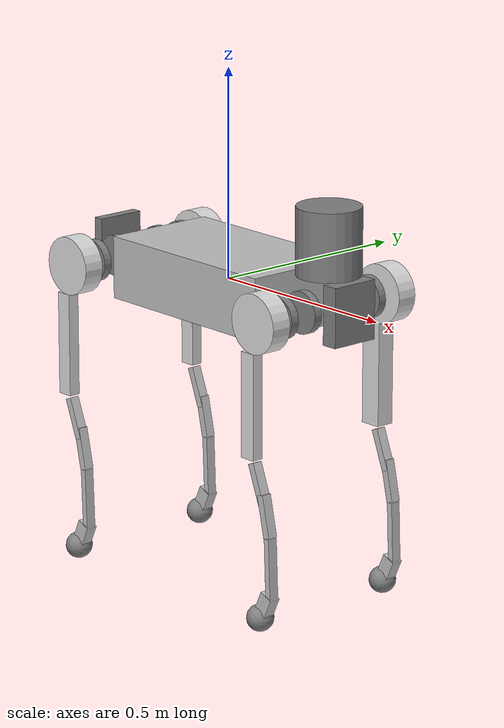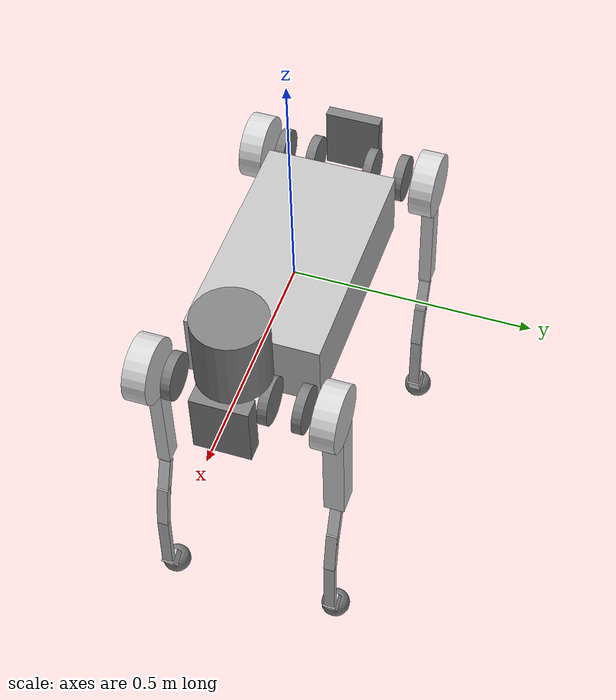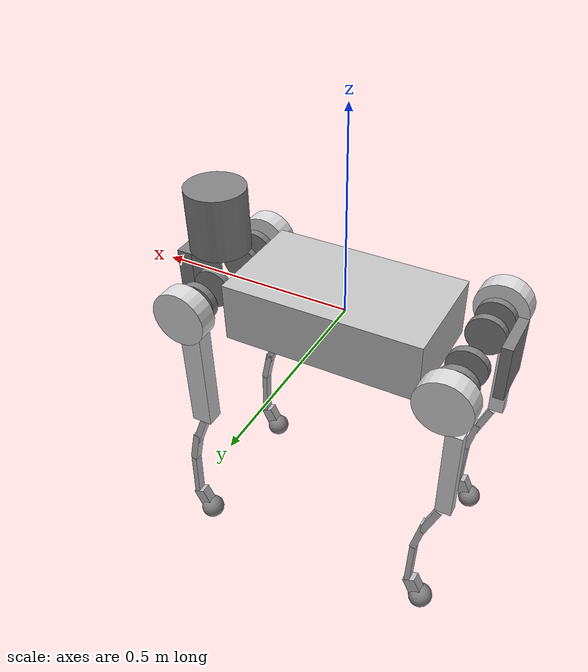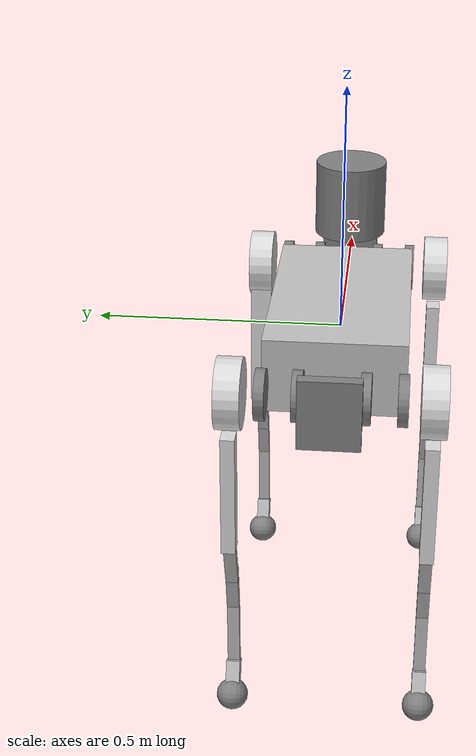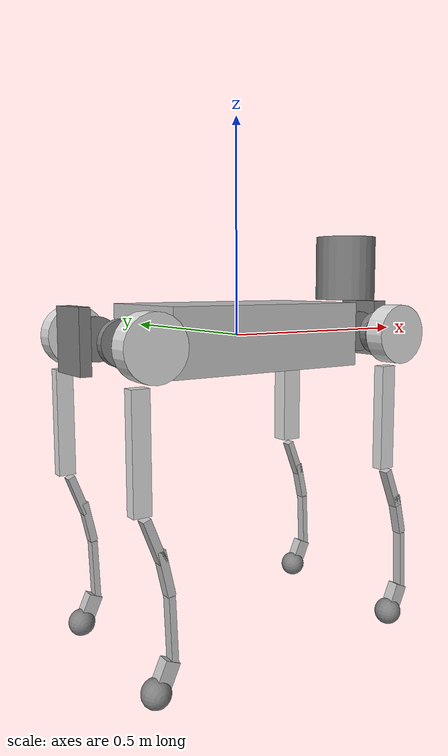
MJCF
<?xml version='1.0' encoding='utf-8'?>
<mujoco model="b2_description">
  <compiler angle="radian" boundmass="1e-06" boundinertia="1e-08" meshdir=".." />
  <worldbody>
    <body name="base_link">
      <inertial pos="0.0234668 0.00454732 0.0114077" quat="0.00524246 0.671113 0.00262644 0.741331" mass="41.4371" diaginertia="1.73124 1.70949 0.384043" />
      <joint type="free" />
      <geom size="0.25 0.14 0.075" type="box" rgba="0.74876 0.74876 0.74876 1" />
      <geom size="0.076 0.08" pos="0.34218 0 0.15851" type="cylinder" />
      <geom size="0.02 0.06 0.07" pos="0.41 0 0.005" type="box" />
      <geom size="0.0125 0.06 0.07" pos="-0.405 0 0.005" type="box" />
      <geom size="0.05 0.01" pos="0.20205 0.072 0" quat="0.707107 0 0.707107 0" type="cylinder" />
      <geom size="0.05 0.01" pos="0.20205 -0.072 0" quat="0.707107 0 0.707107 0" type="cylinder" />
      <geom size="0.05 0.01" pos="-0.20205 0.072 0" quat="0.707107 0 0.707107 0" type="cylinder" />
      <geom size="0.05 0.01" pos="-0.20205 -0.072 0" quat="0.707107 0 0.707107 0" type="cylinder" />
      <body name="FL_hip" pos="0.3285 0.072 0">
        <inertial pos="-0.00274412 -0.00822657 0" quat="0.507287 0.506932 0.492619 0.492957" mass="2.9464" diaginertia="0.00505471 0.00402681 0.00348237" />
        <joint name="FL_hip_joint" pos="0 0 0" axis="1 0 0" range="-0.87 0.87" actuatorfrcrange="-200 200" />
        <geom size="0.07 0.025" pos="0 0.12 0" quat="0.707107 0.707107 0 0" type="cylinder" rgba="0.85 0.85 0.85 1" />
        <geom size="0.05 0.01" pos="0 -0.00798 0" quat="0.707107 0.707107 0 0" type="cylinder" />
        <body name="FL_thigh" pos="0 0.11973 0">
          <inertial pos="-0.00263175 -0.0302271 -0.0545473" quat="0.55531 0.074085 -0.0356501 0.827569" mass="4.8094" diaginertia="0.0647238 0.0638299 0.00827354" />
          <joint name="FL_thigh_joint" pos="0 0 0" axis="0 1 0" range="-0.94 4.69" actuatorfrcrange="-200 200" />
          <geom size="0.16 0.02225 0.027" pos="-0.025 0 -0.16" quat="0.707388 0 0.706825 0" type="box" rgba="0.85 0.85 0.85 1" />
          <geom size="0.05 0.01" pos="0 -0.05788 0" quat="0.707107 0.707107 0 0" type="cylinder" />
          <body name="FL_calf" pos="0 -8.6984e-05 -0.35">
            <inertial pos="-0.0559618 0 -0.044372" quat="0.687062 -0.16717 -0.16717 0.687062" mass="0.53" diaginertia="0.0305664 0.0276967 0.00313573" />
            <joint name="FL_calf_joint" pos="0 0 0" axis="0 1 0" range="-2.82 -0.43" actuatorfrcrange="-320 320" />
            <geom size="0.05 0.01225 0.009" pos="-0.002 0 -0.03" quat="0.825336 0 0.564642 0" type="box" rgba="0.74876 0.74876 0.74876 1" />
            <geom size="0.05 0.01225 0.009" pos="0.022 0 -0.1" quat="0.780707 0 0.624897 0" type="box" rgba="0.74876 0.74876 0.74876 1" />
            <geom size="0.075 0.01225 0.0075" pos="0.036 0 -0.225" quat="0.721382 0 0.692537 0" type="box" rgba="0.74876 0.74876 0.74876 1" />
            <geom size="0.025 0.014 0.0175" pos="0.023 0 -0.31" quat="0.540302 0 0.841471 0" type="box" rgba="0.74876 0.74876 0.74876 1" />
            <geom size="0.032" pos="0 0 -0.35" quat="0.707388 0.706825 0 0" />
          </body>
        </body>
      </body>
      <body name="FR_hip" pos="0.3285 -0.072 0">
        <inertial pos="-0.00918205 0.00927893 0.000239503" quat="0.476089 0.476234 0.519517 0.525967" mass="2.9464" diaginertia="0.00483542 0.00371023 0.00279582" />
        <joint name="FR_hip_joint" pos="0 0 0" axis="1 0 0" range="-0.87 0.87" actuatorfrcrange="-200 200" />
        <geom size="0.07 0.025" pos="0 -0.12 0" quat="0.707107 0.707107 0 0" type="cylinder" rgba="0.85 0.85 0.85 1" />
        <geom size="0.05 0.01" pos="0 0.00798 0" quat="0.707107 0.707107 0 0" type="cylinder" />
        <body name="FR_thigh" pos="0 -0.11973 0">
          <inertial pos="-0.00921236 0.0302271 -0.0545473" quat="0.444592 -0.00741797 0.0763473 0.892443" mass="4.8094" diaginertia="0.0648942 0.0630672 0.00811652" />
          <joint name="FR_thigh_joint" pos="0 0 0" axis="0 1 0" range="-0.94 4.69" actuatorfrcrange="-200 200" />
          <geom size="0.125 0.014 0.02" pos="-0.03 0 -0.2" quat="0.707388 0 0.706825 0" type="box" rgba="0.85 0.85 0.85 1" />
          <geom size="0.05 0.01" pos="0 0.05788 0" quat="0.707107 0.707107 0 0" type="cylinder" />
          <body name="FR_calf" pos="0 8.6986e-05 -0.35">
            <inertial pos="-0.0559618 0 -0.044372" quat="0.687062 -0.16717 -0.16717 0.687062" mass="0.53" diaginertia="0.0305664 0.0276967 0.00313573" />
            <joint name="FR_calf_joint" pos="0 0 0" axis="0 1 0" range="-2.82 -0.43" actuatorfrcrange="-320 320" />
            <geom size="0.05 0.01225 0.009" pos="-0.002 0 -0.03" quat="0.825336 0 0.564642 0" type="box" rgba="0.74876 0.74876 0.74876 1" />
            <geom size="0.05 0.01225 0.009" pos="0.022 0 -0.1" quat="0.780707 0 0.624897 0" type="box" rgba="0.74876 0.74876 0.74876 1" />
            <geom size="0.075 0.01225 0.0075" pos="0.036 0 -0.225" quat="0.721382 0 0.692537 0" type="box" rgba="0.74876 0.74876 0.74876 1" />
            <geom size="0.025 0.014 0.0175" pos="0.023 0 -0.31" quat="0.540302 0 0.841471 0" type="box" rgba="0.74876 0.74876 0.74876 1" />
            <geom size="0.032" pos="0 0 -0.35" quat="0.707388 0.706825 0 0" />
          </body>
        </body>
      </body>
      <body name="RL_hip" pos="-0.3285 0.072 0">
        <inertial pos="0.00918205 -0.00927893 0.000239503" quat="0.476234 0.476089 0.525967 0.519517" mass="2.9464" diaginertia="0.00483542 0.00371023 0.00279582" />
        <joint name="RL_hip_joint" pos="0 0 0" axis="1 0 0" range="-0.87 0.87" actuatorfrcrange="-200 200" />
        <geom size="0.07 0.025" pos="0 0.12 0" quat="0.707107 0.707107 0 0" type="cylinder" rgba="0.85 0.85 0.85 1" />
        <geom size="0.05 0.01" pos="0 -0.00798 0" quat="0.707107 0.707107 0 0" type="cylinder" />
        <body name="RL_thigh" pos="0 0.11973 0">
          <inertial pos="-0.00263175 -0.0302271 -0.0545473" quat="0.555342 0.0740859 -0.035647 0.827548" mass="4.8094" diaginertia="0.0647241 0.06383 0.00827361" />
          <joint name="RL_thigh_joint" pos="0 0 0" axis="0 1 0" range="-0.94 4.69" actuatorfrcrange="-200 200" />
          <geom size="0.125 0.014 0.02" pos="-0.03 0 -0.2" quat="0.707388 0 0.706825 0" type="box" rgba="0.85 0.85 0.85 1" />
          <geom size="0.05 0.01" pos="0 -0.05788 0" quat="0.707107 0.707107 0 0" type="cylinder" />
          <body name="RL_calf" pos="0 -8.6984e-05 -0.35">
            <inertial pos="-0.0559618 0 -0.044372" quat="0.687062 -0.16717 -0.16717 0.687062" mass="0.53" diaginertia="0.0305664 0.0276967 0.00313573" />
            <joint name="RL_calf_joint" pos="0 0 0" axis="0 1 0" range="-2.82 -0.43" actuatorfrcrange="-320 320" />
            <geom size="0.05 0.01225 0.009" pos="-0.002 0 -0.03" quat="0.825336 0 0.564642 0" type="box" rgba="0.74876 0.74876 0.74876 1" />
            <geom size="0.05 0.01225 0.009" pos="0.022 0 -0.1" quat="0.780707 0 0.624897 0" type="box" rgba="0.74876 0.74876 0.74876 1" />
            <geom size="0.075 0.01225 0.0075" pos="0.036 0 -0.225" quat="0.721382 0 0.692537 0" type="box" rgba="0.74876 0.74876 0.74876 1" />
            <geom size="0.025 0.014 0.0175" pos="0.023 0 -0.31" quat="0.540302 0 0.841471 0" type="box" rgba="0.74876 0.74876 0.74876 1" />
            <geom size="0.032" pos="0 0 -0.35" quat="0.707388 0.706825 0 0" />
          </body>
        </body>
      </body>
      <body name="RR_hip" pos="-0.3285 -0.072 0">
        <inertial pos="0.00274412 0.00822657 0" quat="0.506932 0.507287 0.492957 0.492619" mass="2.9464" diaginertia="0.00505471 0.00402681 0.00348237" />
        <joint name="RR_hip_joint" pos="0 0 0" axis="1 0 0" range="-0.87 0.87" actuatorfrcrange="-200 200" />
        <geom size="0.07 0.025" pos="0 -0.12 0" quat="0.707107 0.707107 0 0" type="cylinder" rgba="0.85 0.85 0.85 1" />
        <geom size="0.05 0.01" pos="0 0.00798 0" quat="0.707107 0.707107 0 0" type="cylinder" />
        <body name="RR_thigh" pos="0 -0.11973 0">
          <inertial pos="-0.00921236 0.0302271 -0.0545473" quat="0.444571 -0.00741611 0.0763481 0.892453" mass="4.8094" diaginertia="0.064894 0.0630671 0.00811646" />
          <joint name="RR_thigh_joint" pos="0 0 0" axis="0 1 0" range="-0.94 4.69" actuatorfrcrange="-200 200" />
          <geom size="0.125 0.014 0.02" pos="-0.03 0 -0.2" quat="0.707388 0 0.706825 0" type="box" rgba="0.85 0.85 0.85 1" />
          <geom size="0.05 0.01" pos="0 0.05788 0" quat="0.707107 0.707107 0 0" type="cylinder" />
          <body name="RR_calf" pos="0 8.6986e-05 -0.35">
            <inertial pos="-0.0559618 2.06792e-05 -0.044372" quat="0.687173 -0.167191 -0.167148 0.686951" mass="0.53" diaginertia="0.0305664 0.0276967 0.00313573" />
            <joint name="RR_calf_joint" pos="0 0 0" axis="0 1 0" range="-2.82 -0.43" actuatorfrcrange="-320 320" />
            <geom size="0.05 0.01225 0.009" pos="-0.002 0 -0.03" quat="0.825336 0 0.564642 0" type="box" rgba="0.74876 0.74876 0.74876 1" />
            <geom size="0.05 0.01225 0.009" pos="0.022 0 -0.1" quat="0.780707 0 0.624897 0" type="box" rgba="0.74876 0.74876 0.74876 1" />
            <geom size="0.075 0.01225 0.0075" pos="0.036 0 -0.225" quat="0.721382 0 0.692537 0" type="box" rgba="0.74876 0.74876 0.74876 1" />
            <geom size="0.025 0.014 0.0175" pos="0.023 0 -0.31" quat="0.540302 0 0.841471 0" type="box" rgba="0.74876 0.74876 0.74876 1" />
            <geom size="0.032" pos="0 -8.6984e-05 -0.35" quat="0.707388 0.706825 0 0" />
          </body>
        </body>
      </body>
    </body>
  </worldbody>
</mujoco>
